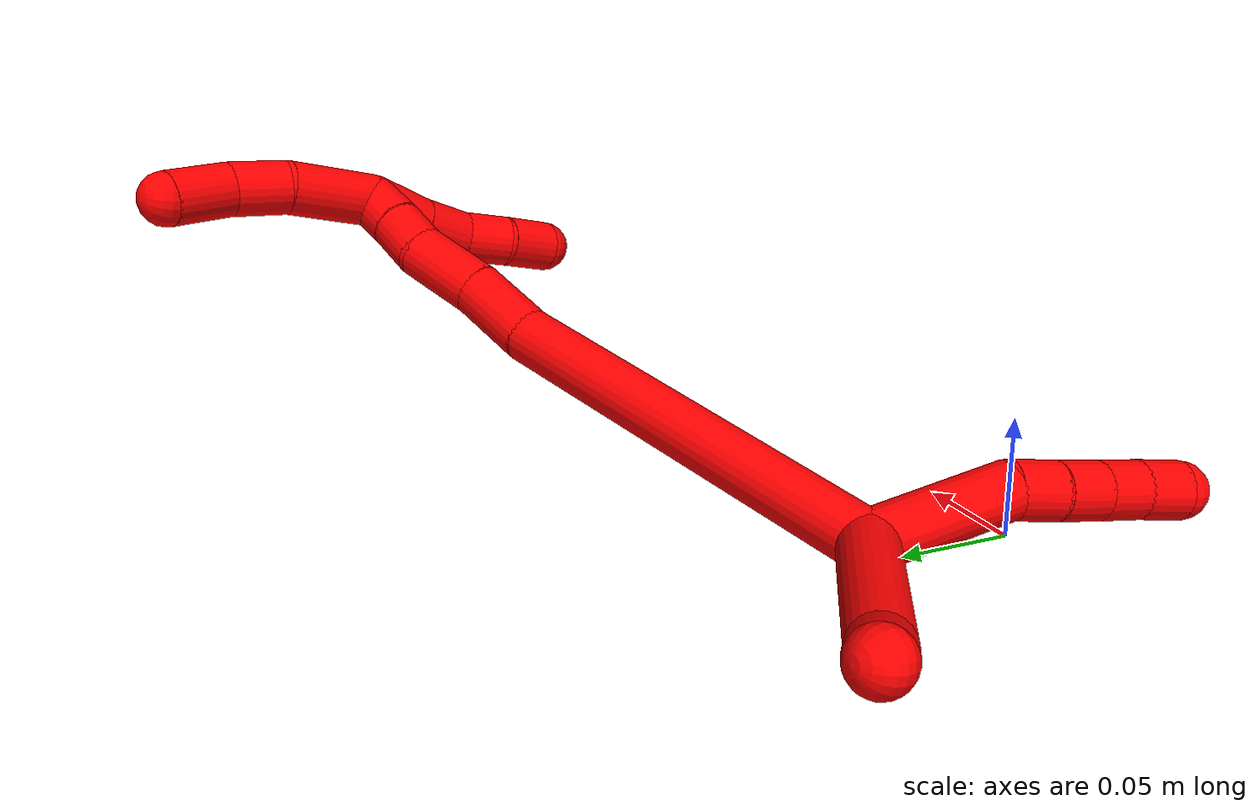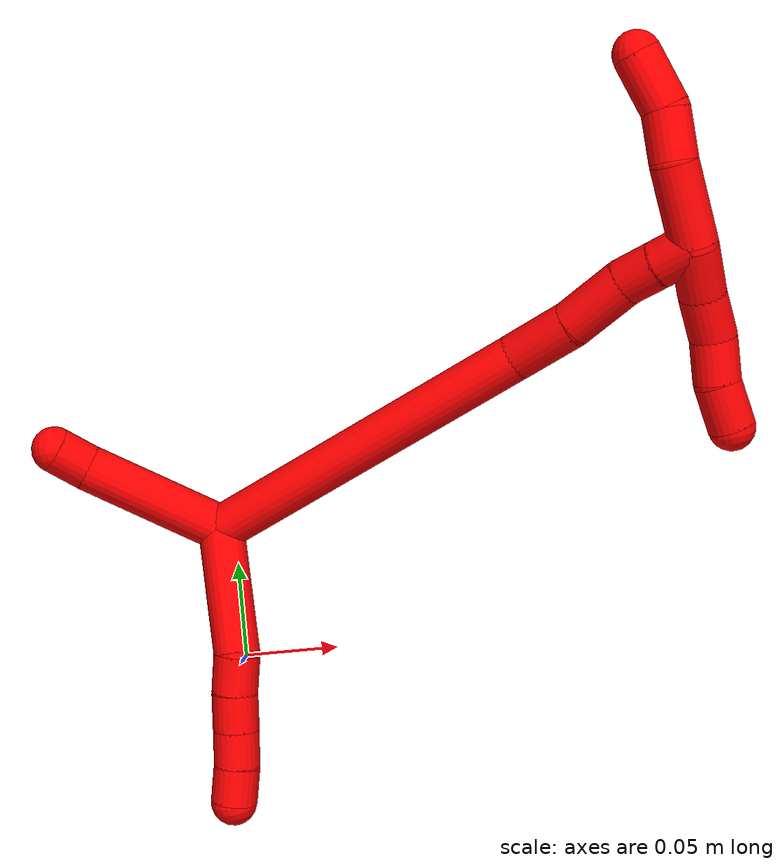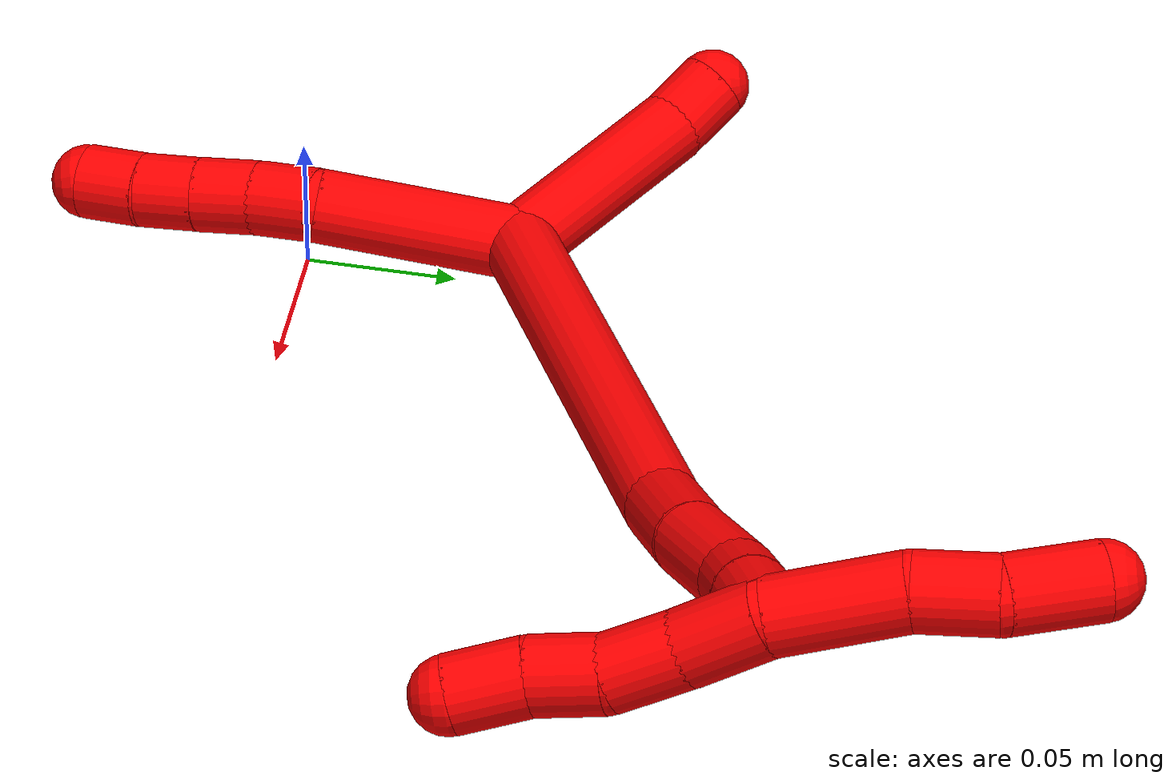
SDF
<sdf version="1.7">
 <world name="default">
  <model name="2">
   <static>0</static>
   <link name="2">
    <collision name="collision-cylinder-e_1_2_8">
     <pose>0.007339 -0.006793 -0.032583 2.93607 0.217018 1.62558</pose>
     <geometry><cylinder><radius>0.0125</radius><length>0.068166</length></cylinder></geometry>
     <surface>
      <friction><ode><mu>1.16</mu><mu2>1.16</mu2><slip1>0</slip1><slip2>0</slip2></ode></friction>
      <contact><ode><kp>1e+06</kp><kd>1</kd><max_vel>0</max_vel><min_depth>0.001</min_depth></ode></contact>
     </surface>
    </collision>
    <visual name="visual-cylinder-e_1_2_8">
     <pose>0.007339 -0.006793 -0.032583 2.93607 0.217018 1.62558</pose>
     <geometry><cylinder><radius>0.0125</radius><length>0.068166</length></cylinder></geometry>
     <material><ambient>1 0 0 1</ambient></material>
    </visual>
    <collision name="collision-cylinder-e_2_8_9">
     <pose>0.013611 -0.016584 -0.075283 2.85342 -0.100736 -0.668779</pose>
     <geometry><cylinder><radius>0.0125</radius><length>0.021212</length></cylinder></geometry>
     <surface>
      <friction><ode><mu>1.16</mu><mu2>1.16</mu2><slip1>0</slip1><slip2>0</slip2></ode></friction>
      <contact><ode><kp>1e+06</kp><kd>1</kd><max_vel>0</max_vel><min_depth>0.001</min_depth></ode></contact>
     </surface>
    </collision>
    <visual name="visual-cylinder-e_2_8_9">
     <pose>0.013611 -0.016584 -0.075283 2.85342 -0.100736 -0.668779</pose>
     <geometry><cylinder><radius>0.0125</radius><length>0.021212</length></cylinder></geometry>
     <material><ambient>1 0 0 1</ambient></material>
    </visual>
    <collision name="collision-cylinder-e_3_9_10">
     <pose>0.011886 -0.0216 -0.095415 2.94283 -0.0643 -0.624027</pose>
     <geometry><cylinder><radius>0.0125</radius><length>0.020474</length></cylinder></geometry>
     <surface>
      <friction><ode><mu>1.16</mu><mu2>1.16</mu2><slip1>0</slip1><slip2>0</slip2></ode></friction>
      <contact><ode><kp>1e+06</kp><kd>1</kd><max_vel>0</max_vel><min_depth>0.001</min_depth></ode></contact>
     </surface>
    </collision>
    <visual name="visual-cylinder-e_3_9_10">
     <pose>0.011886 -0.0216 -0.095415 2.94283 -0.0643 -0.624027</pose>
     <geometry><cylinder><radius>0.0125</radius><length>0.020474</length></cylinder></geometry>
     <material><ambient>1 0 0 1</ambient></material>
    </visual>
    <collision name="collision-cylinder-e_4_10_11">
     <pose>0.010686 -0.025779 -0.115178 2.92336 -0.054277 -0.48578</pose>
     <geometry><cylinder><radius>0.0125</radius><length>0.020001</length></cylinder></geometry>
     <surface>
      <friction><ode><mu>1.16</mu><mu2>1.16</mu2><slip1>0</slip1><slip2>0</slip2></ode></friction>
      <contact><ode><kp>1e+06</kp><kd>1</kd><max_vel>0</max_vel><min_depth>0.001</min_depth></ode></contact>
     </surface>
    </collision>
    <visual name="visual-cylinder-e_4_10_11">
     <pose>0.010686 -0.025779 -0.115178 2.92336 -0.054277 -0.48578</pose>
     <geometry><cylinder><radius>0.0125</radius><length>0.020001</length></cylinder></geometry>
     <material><ambient>1 0 0 1</ambient></material>
    </visual>
    <collision name="collision-cylinder-e_5_11_6">
     <pose>0.009204 -0.031037 -0.134467 2.8278 -0.09341 -0.574544</pose>
     <geometry><cylinder><radius>0.0125</radius><length>0.020147</length></cylinder></geometry>
     <surface>
      <friction><ode><mu>1.16</mu><mu2>1.16</mu2><slip1>0</slip1><slip2>0</slip2></ode></friction>
      <contact><ode><kp>1e+06</kp><kd>1</kd><max_vel>0</max_vel><min_depth>0.001</min_depth></ode></contact>
     </surface>
    </collision>
    <visual name="visual-cylinder-e_5_11_6">
     <pose>0.009204 -0.031037 -0.134467 2.8278 -0.09341 -0.574544</pose>
     <geometry><cylinder><radius>0.0125</radius><length>0.020147</length></cylinder></geometry>
     <material><ambient>1 0 0 1</ambient></material>
    </visual>
    <collision name="collision-cylinder-e_1_2_12">
     <pose>-0.015499 -0.027299 0.024133 0.846862 -0.402192 -0.183235</pose>
     <geometry><cylinder><radius>0.0125</radius><length>0.079193</length></cylinder></geometry>
     <surface>
      <friction><ode><mu>1.16</mu><mu2>1.16</mu2><slip1>0</slip1><slip2>0</slip2></ode></friction>
      <contact><ode><kp>1e+06</kp><kd>1</kd><max_vel>0</max_vel><min_depth>0.001</min_depth></ode></contact>
     </surface>
    </collision>
    <visual name="visual-cylinder-e_1_2_12">
     <pose>-0.015499 -0.027299 0.024133 0.846862 -0.402192 -0.183235</pose>
     <geometry><cylinder><radius>0.0125</radius><length>0.079193</length></cylinder></geometry>
     <material><ambient>1 0 0 1</ambient></material>
    </visual>
    <collision name="collision-cylinder-e_2_12_5">
     <pose>-0.031777 -0.062052 0.055482 0.801749 -0.074824 -0.031724</pose>
     <geometry><cylinder><radius>0.0125</radius><length>0.020807</length></cylinder></geometry>
     <surface>
      <friction><ode><mu>1.16</mu><mu2>1.16</mu2><slip1>0</slip1><slip2>0</slip2></ode></friction>
      <contact><ode><kp>1e+06</kp><kd>1</kd><max_vel>0</max_vel><min_depth>0.001</min_depth></ode></contact>
     </surface>
    </collision>
    <visual name="visual-cylinder-e_2_12_5">
     <pose>-0.031777 -0.062052 0.055482 0.801749 -0.074824 -0.031724</pose>
     <geometry><cylinder><radius>0.0125</radius><length>0.020807</length></cylinder></geometry>
     <material><ambient>1 0 0 1</ambient></material>
    </visual>
    <collision name="collision-cylinder-e_1_2_13">
     <pose>0.050423 0.07307 0.028694 -1.1966 0.57095 -0.394901</pose>
     <geometry><cylinder><radius>0.0125</radius><length>0.186603</length></cylinder></geometry>
     <surface>
      <friction><ode><mu>1.16</mu><mu2>1.16</mu2><slip1>0</slip1><slip2>0</slip2></ode></friction>
      <contact><ode><kp>1e+06</kp><kd>1</kd><max_vel>0</max_vel><min_depth>0.001</min_depth></ode></contact>
     </surface>
    </collision>
    <visual name="visual-cylinder-e_1_2_13">
     <pose>0.050423 0.07307 0.028694 -1.1966 0.57095 -0.394901</pose>
     <geometry><cylinder><radius>0.0125</radius><length>0.186603</length></cylinder></geometry>
     <material><ambient>1 0 0 1</ambient></material>
    </visual>
    <collision name="collision-cylinder-e_2_13_14">
     <pose>0.1131 0.157854 0.063087 -1.11802 0.754895 -0.486213</pose>
     <geometry><cylinder><radius>0.0125</radius><length>0.035768</length></cylinder></geometry>
     <surface>
      <friction><ode><mu>1.16</mu><mu2>1.16</mu2><slip1>0</slip1><slip2>0</slip2></ode></friction>
      <contact><ode><kp>1e+06</kp><kd>1</kd><max_vel>0</max_vel><min_depth>0.001</min_depth></ode></contact>
     </surface>
    </collision>
    <visual name="visual-cylinder-e_2_13_14">
     <pose>0.1131 0.157854 0.063087 -1.11802 0.754895 -0.486213</pose>
     <geometry><cylinder><radius>0.0125</radius><length>0.035768</length></cylinder></geometry>
     <material><ambient>1 0 0 1</ambient></material>
    </visual>
    <collision name="collision-cylinder-e_3_14_15">
     <pose>0.136417 0.181418 0.076704 -0.981775 0.660014 -0.362175</pose>
     <geometry><cylinder><radius>0.0125</radius><length>0.036085</length></cylinder></geometry>
     <surface>
      <friction><ode><mu>1.16</mu><mu2>1.16</mu2><slip1>0</slip1><slip2>0</slip2></ode></friction>
      <contact><ode><kp>1e+06</kp><kd>1</kd><max_vel>0</max_vel><min_depth>0.001</min_depth></ode></contact>
     </surface>
    </collision>
    <visual name="visual-cylinder-e_3_14_15">
     <pose>0.136417 0.181418 0.076704 -0.981775 0.660014 -0.362175</pose>
     <geometry><cylinder><radius>0.0125</radius><length>0.036085</length></cylinder></geometry>
     <material><ambient>1 0 0 1</ambient></material>
    </visual>
    <collision name="collision-cylinder-e_4_15_16">
     <pose>0.155123 0.199556 0.087417 -1.15243 0.838002 -0.563392</pose>
     <geometry><cylinder><radius>0.0125</radius><length>0.020566</length></cylinder></geometry>
     <surface>
      <friction><ode><mu>1.16</mu><mu2>1.16</mu2><slip1>0</slip1><slip2>0</slip2></ode></friction>
      <contact><ode><kp>1e+06</kp><kd>1</kd><max_vel>0</max_vel><min_depth>0.001</min_depth></ode></contact>
     </surface>
    </collision>
    <visual name="visual-cylinder-e_4_15_16">
     <pose>0.155123 0.199556 0.087417 -1.15243 0.838002 -0.563392</pose>
     <geometry><cylinder><radius>0.0125</radius><length>0.020566</length></cylinder></geometry>
     <material><ambient>1 0 0 1</ambient></material>
    </visual>
    <collision name="collision-cylinder-e_5_16_1">
     <pose>0.170109 0.212769 0.09306 -1.18079 0.775389 -0.534232</pose>
     <geometry><cylinder><radius>0.0125</radius><length>0.020978</length></cylinder></geometry>
     <surface>
      <friction><ode><mu>1.16</mu><mu2>1.16</mu2><slip1>0</slip1><slip2>0</slip2></ode></friction>
      <contact><ode><kp>1e+06</kp><kd>1</kd><max_vel>0</max_vel><min_depth>0.001</min_depth></ode></contact>
     </surface>
    </collision>
    <visual name="visual-cylinder-e_5_16_1">
     <pose>0.170109 0.212769 0.09306 -1.18079 0.775389 -0.534232</pose>
     <geometry><cylinder><radius>0.0125</radius><length>0.020978</length></cylinder></geometry>
     <material><ambient>1 0 0 1</ambient></material>
    </visual>
    <collision name="collision-cylinder-e_1_1_17">
     <pose>0.179077 0.218273 0.117363 0.066296 0.075483 0.002504</pose>
     <geometry><cylinder><radius>0.0125</radius><length>0.043129</length></cylinder></geometry>
     <surface>
      <friction><ode><mu>1.16</mu><mu2>1.16</mu2><slip1>0</slip1><slip2>0</slip2></ode></friction>
      <contact><ode><kp>1e+06</kp><kd>1</kd><max_vel>0</max_vel><min_depth>0.001</min_depth></ode></contact>
     </surface>
    </collision>
    <visual name="visual-cylinder-e_1_1_17">
     <pose>0.179077 0.218273 0.117363 0.066296 0.075483 0.002504</pose>
     <geometry><cylinder><radius>0.0125</radius><length>0.043129</length></cylinder></geometry>
     <material><ambient>1 0 0 1</ambient></material>
    </visual>
    <collision name="collision-cylinder-e_2_17_18">
     <pose>0.179779 0.218326 0.151926 -0.112281 -0.069988 0.003935</pose>
     <geometry><cylinder><radius>0.0125</radius><length>0.026445</length></cylinder></geometry>
     <surface>
      <friction><ode><mu>1.16</mu><mu2>1.16</mu2><slip1>0</slip1><slip2>0</slip2></ode></friction>
      <contact><ode><kp>1e+06</kp><kd>1</kd><max_vel>0</max_vel><min_depth>0.001</min_depth></ode></contact>
     </surface>
    </collision>
    <visual name="visual-cylinder-e_2_17_18">
     <pose>0.179779 0.218326 0.151926 -0.112281 -0.069988 0.003935</pose>
     <geometry><cylinder><radius>0.0125</radius><length>0.026445</length></cylinder></geometry>
     <material><ambient>1 0 0 1</ambient></material>
    </visual>
    <collision name="collision-cylinder-e_3_18_4">
     <pose>0.175276 0.217269 0.1796 0.172311 -0.237446 -0.020604</pose>
     <geometry><cylinder><radius>0.0125</radius><length>0.030426</length></cylinder></geometry>
     <surface>
      <friction><ode><mu>1.16</mu><mu2>1.16</mu2><slip1>0</slip1><slip2>0</slip2></ode></friction>
      <contact><ode><kp>1e+06</kp><kd>1</kd><max_vel>0</max_vel><min_depth>0.001</min_depth></ode></contact>
     </surface>
    </collision>
    <visual name="visual-cylinder-e_3_18_4">
     <pose>0.175276 0.217269 0.1796 0.172311 -0.237446 -0.020604</pose>
     <geometry><cylinder><radius>0.0125</radius><length>0.030426</length></cylinder></geometry>
     <material><ambient>1 0 0 1</ambient></material>
    </visual>
    <collision name="collision-cylinder-e_1_1_19">
     <pose>0.173 0.221599 0.083137 -2.9938 -0.332023 2.3095</pose>
     <geometry><cylinder><radius>0.0125</radius><length>0.027313</length></cylinder></geometry>
     <surface>
      <friction><ode><mu>1.16</mu><mu2>1.16</mu2><slip1>0</slip1><slip2>0</slip2></ode></friction>
      <contact><ode><kp>1e+06</kp><kd>1</kd><max_vel>0</max_vel><min_depth>0.001</min_depth></ode></contact>
     </surface>
    </collision>
    <visual name="visual-cylinder-e_1_1_19">
     <pose>0.173 0.221599 0.083137 -2.9938 -0.332023 2.3095</pose>
     <geometry><cylinder><radius>0.0125</radius><length>0.027313</length></cylinder></geometry>
     <material><ambient>1 0 0 1</ambient></material>
    </visual>
    <collision name="collision-cylinder-e_2_19_20">
     <pose>0.165957 0.225394 0.058516 -2.98311 -0.212592 1.86199</pose>
     <geometry><cylinder><radius>0.0125</radius><length>0.024557</length></cylinder></geometry>
     <surface>
      <friction><ode><mu>1.16</mu><mu2>1.16</mu2><slip1>0</slip1><slip2>0</slip2></ode></friction>
      <contact><ode><kp>1e+06</kp><kd>1</kd><max_vel>0</max_vel><min_depth>0.001</min_depth></ode></contact>
     </surface>
    </collision>
    <visual name="visual-cylinder-e_2_19_20">
     <pose>0.165957 0.225394 0.058516 -2.98311 -0.212592 1.86199</pose>
     <geometry><cylinder><radius>0.0125</radius><length>0.024557</length></cylinder></geometry>
     <material><ambient>1 0 0 1</ambient></material>
    </visual>
    <collision name="collision-cylinder-e_3_20_21">
     <pose>0.162381 0.226155 0.035039 3.04444 -0.084219 -1.42822</pose>
     <geometry><cylinder><radius>0.0125</radius><length>0.023443</length></cylinder></geometry>
     <surface>
      <friction><ode><mu>1.16</mu><mu2>1.16</mu2><slip1>0</slip1><slip2>0</slip2></ode></friction>
      <contact><ode><kp>1e+06</kp><kd>1</kd><max_vel>0</max_vel><min_depth>0.001</min_depth></ode></contact>
     </surface>
    </collision>
    <visual name="visual-cylinder-e_3_20_21">
     <pose>0.162381 0.226155 0.035039 3.04444 -0.084219 -1.42822</pose>
     <geometry><cylinder><radius>0.0125</radius><length>0.023443</length></cylinder></geometry>
     <material><ambient>1 0 0 1</ambient></material>
    </visual>
    <collision name="collision-cylinder-e_4_21_3">
     <pose>0.160819 0.22667 0.011195 -3.00758 -0.046645 0.669078</pose>
     <geometry><cylinder><radius>0.0125</radius><length>0.024687</length></cylinder></geometry>
     <surface>
      <friction><ode><mu>1.16</mu><mu2>1.16</mu2><slip1>0</slip1><slip2>0</slip2></ode></friction>
      <contact><ode><kp>1e+06</kp><kd>1</kd><max_vel>0</max_vel><min_depth>0.001</min_depth></ode></contact>
     </surface>
    </collision>
    <visual name="visual-cylinder-e_4_21_3">
     <pose>0.160819 0.22667 0.011195 -3.00758 -0.046645 0.669078</pose>
     <geometry><cylinder><radius>0.0125</radius><length>0.024687</length></cylinder></geometry>
     <material><ambient>1 0 0 1</ambient></material>
    </visual>
    <collision name="collision-sphere-3">
     <pose>0.160244 0.228317 -0.001024 0 -0 0</pose>
     <geometry><sphere><radius>0.0125</radius></sphere></geometry>
     <surface>
      <friction><ode><mu>1.16</mu><mu2>1.16</mu2><slip1>0</slip1><slip2>0</slip2></ode></friction>
      <contact><ode><kp>1e+06</kp><kd>1</kd><max_vel>0</max_vel><min_depth>0.001</min_depth></ode></contact>
     </surface>
    </collision>
    <visual name="visual-sphere-3">
     <pose>0.160244 0.228317 -0.001024 0 -0 0</pose>
     <geometry><sphere><radius>0.0125</radius></sphere></geometry>
     <material><ambient>1 0 0 1</ambient></material>
    </visual>
    <collision name="collision-sphere-21">
     <pose>0.161395 0.225022 0.023414 0 -0 0</pose>
     <geometry><sphere><radius>0.0125</radius></sphere></geometry>
     <surface>
      <friction><ode><mu>1.16</mu><mu2>1.16</mu2><slip1>0</slip1><slip2>0</slip2></ode></friction>
      <contact><ode><kp>1e+06</kp><kd>1</kd><max_vel>0</max_vel><min_depth>0.001</min_depth></ode></contact>
     </surface>
    </collision>
    <visual name="visual-sphere-21">
     <pose>0.161395 0.225022 0.023414 0 -0 0</pose>
     <geometry><sphere><radius>0.0125</radius></sphere></geometry>
     <material><ambient>1 0 0 1</ambient></material>
    </visual>
    <collision name="collision-sphere-20">
     <pose>0.163367 0.227288 0.046664 0 -0 0</pose>
     <geometry><sphere><radius>0.0125</radius></sphere></geometry>
     <surface>
      <friction><ode><mu>1.16</mu><mu2>1.16</mu2><slip1>0</slip1><slip2>0</slip2></ode></friction>
      <contact><ode><kp>1e+06</kp><kd>1</kd><max_vel>0</max_vel><min_depth>0.001</min_depth></ode></contact>
     </surface>
    </collision>
    <visual name="visual-sphere-20">
     <pose>0.163367 0.227288 0.046664 0 -0 0</pose>
     <geometry><sphere><radius>0.0125</radius></sphere></geometry>
     <material><ambient>1 0 0 1</ambient></material>
    </visual>
    <collision name="collision-sphere-19">
     <pose>0.168548 0.2235 0.070367 0 -0 0</pose>
     <geometry><sphere><radius>0.0125</radius></sphere></geometry>
     <surface>
      <friction><ode><mu>1.16</mu><mu2>1.16</mu2><slip1>0</slip1><slip2>0</slip2></ode></friction>
      <contact><ode><kp>1e+06</kp><kd>1</kd><max_vel>0</max_vel><min_depth>0.001</min_depth></ode></contact>
     </surface>
    </collision>
    <visual name="visual-sphere-19">
     <pose>0.168548 0.2235 0.070367 0 -0 0</pose>
     <geometry><sphere><radius>0.0125</radius></sphere></geometry>
     <material><ambient>1 0 0 1</ambient></material>
    </visual>
    <collision name="collision-sphere-6">
     <pose>0.008264 -0.034133 -0.144007 0 -0 0</pose>
     <geometry><sphere><radius>0.0125</radius></sphere></geometry>
     <surface>
      <friction><ode><mu>1.16</mu><mu2>1.16</mu2><slip1>0</slip1><slip2>0</slip2></ode></friction>
      <contact><ode><kp>1e+06</kp><kd>1</kd><max_vel>0</max_vel><min_depth>0.001</min_depth></ode></contact>
     </surface>
    </collision>
    <visual name="visual-sphere-6">
     <pose>0.008264 -0.034133 -0.144007 0 -0 0</pose>
     <geometry><sphere><radius>0.0125</radius></sphere></geometry>
     <material><ambient>1 0 0 1</ambient></material>
    </visual>
    <collision name="collision-sphere-11">
     <pose>0.010144 -0.027941 -0.124928 0 -0 0</pose>
     <geometry><sphere><radius>0.0125</radius></sphere></geometry>
     <surface>
      <friction><ode><mu>1.16</mu><mu2>1.16</mu2><slip1>0</slip1><slip2>0</slip2></ode></friction>
      <contact><ode><kp>1e+06</kp><kd>1</kd><max_vel>0</max_vel><min_depth>0.001</min_depth></ode></contact>
     </surface>
    </collision>
    <visual name="visual-sphere-11">
     <pose>0.010144 -0.027941 -0.124928 0 -0 0</pose>
     <geometry><sphere><radius>0.0125</radius></sphere></geometry>
     <material><ambient>1 0 0 1</ambient></material>
    </visual>
    <collision name="collision-sphere-10">
     <pose>0.011229 -0.023617 -0.105429 0 -0 0</pose>
     <geometry><sphere><radius>0.0125</radius></sphere></geometry>
     <surface>
      <friction><ode><mu>1.16</mu><mu2>1.16</mu2><slip1>0</slip1><slip2>0</slip2></ode></friction>
      <contact><ode><kp>1e+06</kp><kd>1</kd><max_vel>0</max_vel><min_depth>0.001</min_depth></ode></contact>
     </surface>
    </collision>
    <visual name="visual-sphere-10">
     <pose>0.011229 -0.023617 -0.105429 0 -0 0</pose>
     <geometry><sphere><radius>0.0125</radius></sphere></geometry>
     <material><ambient>1 0 0 1</ambient></material>
    </visual>
    <collision name="collision-sphere-9">
     <pose>0.012544 -0.019583 -0.0854 0 -0 0</pose>
     <geometry><sphere><radius>0.0125</radius></sphere></geometry>
     <surface>
      <friction><ode><mu>1.16</mu><mu2>1.16</mu2><slip1>0</slip1><slip2>0</slip2></ode></friction>
      <contact><ode><kp>1e+06</kp><kd>1</kd><max_vel>0</max_vel><min_depth>0.001</min_depth></ode></contact>
     </surface>
    </collision>
    <visual name="visual-sphere-9">
     <pose>0.012544 -0.019583 -0.0854 0 -0 0</pose>
     <geometry><sphere><radius>0.0125</radius></sphere></geometry>
     <material><ambient>1 0 0 1</ambient></material>
    </visual>
    <collision name="collision-sphere-2">
     <geometry><sphere><radius>0.0125</radius></sphere></geometry>
     <surface>
      <friction><ode><mu>1.16</mu><mu2>1.16</mu2><slip1>0</slip1><slip2>0</slip2></ode></friction>
      <contact><ode><kp>1e+06</kp><kd>1</kd><max_vel>0</max_vel><min_depth>0.001</min_depth></ode></contact>
     </surface>
    </collision>
    <visual name="visual-sphere-2">
     <geometry><sphere><radius>0.0125</radius></sphere></geometry>
     <material><ambient>1 0 0 1</ambient></material>
    </visual>
    <collision name="collision-sphere-8">
     <pose>0.014677 -0.013585 -0.065166 0 -0 0</pose>
     <geometry><sphere><radius>0.0125</radius></sphere></geometry>
     <surface>
      <friction><ode><mu>1.16</mu><mu2>1.16</mu2><slip1>0</slip1><slip2>0</slip2></ode></friction>
      <contact><ode><kp>1e+06</kp><kd>1</kd><max_vel>0</max_vel><min_depth>0.001</min_depth></ode></contact>
     </surface>
    </collision>
    <visual name="visual-sphere-8">
     <pose>0.014677 -0.013585 -0.065166 0 -0 0</pose>
     <geometry><sphere><radius>0.0125</radius></sphere></geometry>
     <material><ambient>1 0 0 1</ambient></material>
    </visual>
    <collision name="collision-sphere-12">
     <pose>-0.030999 -0.054597 0.048267 0 -0 0</pose>
     <geometry><sphere><radius>0.0125</radius></sphere></geometry>
     <surface>
      <friction><ode><mu>1.16</mu><mu2>1.16</mu2><slip1>0</slip1><slip2>0</slip2></ode></friction>
      <contact><ode><kp>1e+06</kp><kd>1</kd><max_vel>0</max_vel><min_depth>0.001</min_depth></ode></contact>
     </surface>
    </collision>
    <visual name="visual-sphere-12">
     <pose>-0.030999 -0.054597 0.048267 0 -0 0</pose>
     <geometry><sphere><radius>0.0125</radius></sphere></geometry>
     <material><ambient>1 0 0 1</ambient></material>
    </visual>
    <collision name="collision-sphere-5">
     <pose>-0.032554 -0.069507 0.062697 0 -0 0</pose>
     <geometry><sphere><radius>0.0125</radius></sphere></geometry>
     <surface>
      <friction><ode><mu>1.16</mu><mu2>1.16</mu2><slip1>0</slip1><slip2>0</slip2></ode></friction>
      <contact><ode><kp>1e+06</kp><kd>1</kd><max_vel>0</max_vel><min_depth>0.001</min_depth></ode></contact>
     </surface>
    </collision>
    <visual name="visual-sphere-5">
     <pose>-0.032554 -0.069507 0.062697 0 -0 0</pose>
     <geometry><sphere><radius>0.0125</radius></sphere></geometry>
     <material><ambient>1 0 0 1</ambient></material>
    </visual>
    <collision name="collision-sphere-13">
     <pose>0.100846 0.146141 0.057389 0 -0 0</pose>
     <geometry><sphere><radius>0.0125</radius></sphere></geometry>
     <surface>
      <friction><ode><mu>1.16</mu><mu2>1.16</mu2><slip1>0</slip1><slip2>0</slip2></ode></friction>
      <contact><ode><kp>1e+06</kp><kd>1</kd><max_vel>0</max_vel><min_depth>0.001</min_depth></ode></contact>
     </surface>
    </collision>
    <visual name="visual-sphere-13">
     <pose>0.100846 0.146141 0.057389 0 -0 0</pose>
     <geometry><sphere><radius>0.0125</radius></sphere></geometry>
     <material><ambient>1 0 0 1</ambient></material>
    </visual>
    <collision name="collision-sphere-14">
     <pose>0.125355 0.169567 0.068785 0 -0 0</pose>
     <geometry><sphere><radius>0.0125</radius></sphere></geometry>
     <surface>
      <friction><ode><mu>1.16</mu><mu2>1.16</mu2><slip1>0</slip1><slip2>0</slip2></ode></friction>
      <contact><ode><kp>1e+06</kp><kd>1</kd><max_vel>0</max_vel><min_depth>0.001</min_depth></ode></contact>
     </surface>
    </collision>
    <visual name="visual-sphere-14">
     <pose>0.125355 0.169567 0.068785 0 -0 0</pose>
     <geometry><sphere><radius>0.0125</radius></sphere></geometry>
     <material><ambient>1 0 0 1</ambient></material>
    </visual>
    <collision name="collision-sphere-15">
     <pose>0.147479 0.19327 0.084622 0 -0 0</pose>
     <geometry><sphere><radius>0.0125</radius></sphere></geometry>
     <surface>
      <friction><ode><mu>1.16</mu><mu2>1.16</mu2><slip1>0</slip1><slip2>0</slip2></ode></friction>
      <contact><ode><kp>1e+06</kp><kd>1</kd><max_vel>0</max_vel><min_depth>0.001</min_depth></ode></contact>
     </surface>
    </collision>
    <visual name="visual-sphere-15">
     <pose>0.147479 0.19327 0.084622 0 -0 0</pose>
     <geometry><sphere><radius>0.0125</radius></sphere></geometry>
     <material><ambient>1 0 0 1</ambient></material>
    </visual>
    <collision name="collision-sphere-16">
     <pose>0.162766 0.205841 0.090212 0 -0 0</pose>
     <geometry><sphere><radius>0.0125</radius></sphere></geometry>
     <surface>
      <friction><ode><mu>1.16</mu><mu2>1.16</mu2><slip1>0</slip1><slip2>0</slip2></ode></friction>
      <contact><ode><kp>1e+06</kp><kd>1</kd><max_vel>0</max_vel><min_depth>0.001</min_depth></ode></contact>
     </surface>
    </collision>
    <visual name="visual-sphere-16">
     <pose>0.162766 0.205841 0.090212 0 -0 0</pose>
     <geometry><sphere><radius>0.0125</radius></sphere></geometry>
     <material><ambient>1 0 0 1</ambient></material>
    </visual>
    <collision name="collision-sphere-1">
     <pose>0.177451 0.219698 0.095907 0 -0 0</pose>
     <geometry><sphere><radius>0.0125</radius></sphere></geometry>
     <surface>
      <friction><ode><mu>1.16</mu><mu2>1.16</mu2><slip1>0</slip1><slip2>0</slip2></ode></friction>
      <contact><ode><kp>1e+06</kp><kd>1</kd><max_vel>0</max_vel><min_depth>0.001</min_depth></ode></contact>
     </surface>
    </collision>
    <visual name="visual-sphere-1">
     <pose>0.177451 0.219698 0.095907 0 -0 0</pose>
     <geometry><sphere><radius>0.0125</radius></sphere></geometry>
     <material><ambient>1 0 0 1</ambient></material>
    </visual>
    <collision name="collision-sphere-18">
     <pose>0.178854 0.219804 0.165033 0 -0 0</pose>
     <geometry><sphere><radius>0.0125</radius></sphere></geometry>
     <surface>
      <friction><ode><mu>1.16</mu><mu2>1.16</mu2><slip1>0</slip1><slip2>0</slip2></ode></friction>
      <contact><ode><kp>1e+06</kp><kd>1</kd><max_vel>0</max_vel><min_depth>0.001</min_depth></ode></contact>
     </surface>
    </collision>
    <visual name="visual-sphere-18">
     <pose>0.178854 0.219804 0.165033 0 -0 0</pose>
     <geometry><sphere><radius>0.0125</radius></sphere></geometry>
     <material><ambient>1 0 0 1</ambient></material>
    </visual>
    <collision name="collision-sphere-17">
     <pose>0.180703 0.216849 0.138819 0 -0 0</pose>
     <geometry><sphere><radius>0.0125</radius></sphere></geometry>
     <surface>
      <friction><ode><mu>1.16</mu><mu2>1.16</mu2><slip1>0</slip1><slip2>0</slip2></ode></friction>
      <contact><ode><kp>1e+06</kp><kd>1</kd><max_vel>0</max_vel><min_depth>0.001</min_depth></ode></contact>
     </surface>
    </collision>
    <visual name="visual-sphere-17">
     <pose>0.180703 0.216849 0.138819 0 -0 0</pose>
     <geometry><sphere><radius>0.0125</radius></sphere></geometry>
     <material><ambient>1 0 0 1</ambient></material>
    </visual>
    <collision name="collision-sphere-4">
     <pose>0.171697 0.214734 0.194168 0 -0 0</pose>
     <geometry><sphere><radius>0.0125</radius></sphere></geometry>
     <surface>
      <friction><ode><mu>1.16</mu><mu2>1.16</mu2><slip1>0</slip1><slip2>0</slip2></ode></friction>
      <contact><ode><kp>1e+06</kp><kd>1</kd><max_vel>0</max_vel><min_depth>0.001</min_depth></ode></contact>
     </surface>
    </collision>
    <visual name="visual-sphere-4">
     <pose>0.171697 0.214734 0.194168 0 -0 0</pose>
     <geometry><sphere><radius>0.0125</radius></sphere></geometry>
     <material><ambient>1 0 0 1</ambient></material>
    </visual>
    <inertial>
     <pose>0.078756 0.097104 0.034346 0 -0 0</pose>
     <mass>0.75</mass>
     <inertia>
      <ixx>0.000344</ixx>
      <ixy>0</ixy>
      <ixz>0</ixz>
      <iyy>0.000194</iyy>
      <iyz>0</iyz>
      <izz>-0.00069</izz>
     </inertia>
    </inertial>
   </link>
   <pose>-0.006739 0.070571 0.013233 -1.17799 -1.16421 -0.209962</pose>
  </model>
 </world>
</sdf>
